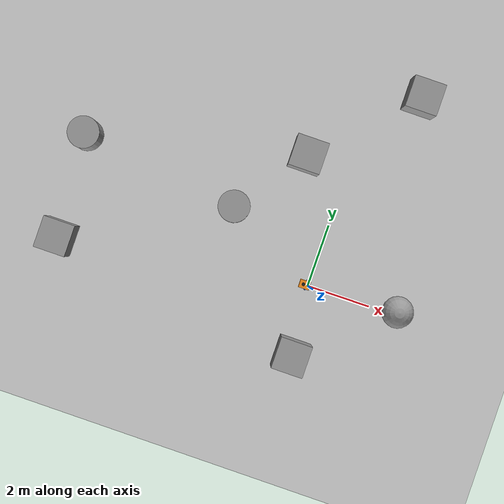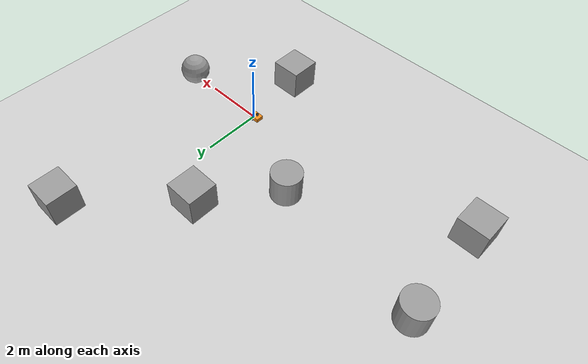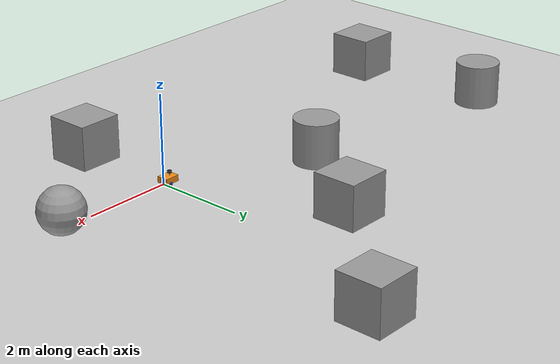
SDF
<sdf version="1.7">
 <world name="default">
  <light name="sun" type="directional">
   <pose>0 0 10 0 -0 0</pose>
   <diffuse>0.8 0.8 0.8 1</diffuse>
   <specular>0.2 0.2 0.2 1</specular>
   <attenuation>
    <range>1000</range>
    <constant>0.9</constant>
    <linear>0.01</linear>
    <quadratic>0.001</quadratic>
   </attenuation>
   <direction>-0.5 0.1 -0.9</direction>
   <spot><inner_angle>0</inner_angle><outer_angle>0</outer_angle><falloff>0</falloff></spot>
  </light>
  <model name="ground_plane">
   <static>1</static>
   <link name="link">
    <collision name="collision">
     <geometry><plane><normal>0 0 1</normal><size>100 100</size></plane></geometry>
     <surface>
      <contact><collide_bitmask>65535</collide_bitmask></contact>
      <friction><ode><mu>100</mu><mu2>50</mu2></ode></friction>
     </surface>
    </collision>
    <visual name="visual">
     <cast_shadows>0</cast_shadows>
     <geometry><plane><normal>0 0 1</normal><size>100 100</size></plane></geometry>
     <material>
      <script><uri>file://media/materials/scripts/gazebo.material</uri><name>Gazebo/Grey</name></script>
     </material>
    </visual>
   </link>
  </model>
  <gravity>0 0 -9.8</gravity>
  <magnetic_field>6e-06 2.3e-05 -4.2e-05</magnetic_field>
  <atmosphere type="adiabatic"/>
  <physics type="ode">
   <max_step_size>0.001</max_step_size>
   <real_time_factor>1</real_time_factor>
   <real_time_update_rate>1000</real_time_update_rate>
  </physics>
  <scene><ambient>0.4 0.4 0.4 1</ambient><background>0.7 0.7 0.7 1</background><shadows>1</shadows></scene>
  <audio><device>default</device></audio>
  <spherical_coordinates>
   <surface_model>EARTH_WGS84</surface_model>
   <latitude_deg>0</latitude_deg>
   <longitude_deg>0</longitude_deg>
   <elevation>0</elevation>
   <heading_deg>0</heading_deg>
  </spherical_coordinates>
  <model name="my_bot">
   <link name="base_link">
    <inertial>
     <pose>-0.067475 0 0.081098 0 -0 0</pose>
     <mass>0.61</mass>
     <inertia>
      <ixx>0.00561003</ixx>
      <ixy>0</ixy>
      <ixz>0.000453811</ixz>
      <iyy>0.00760348</iyy>
      <iyz>0</iyz>
      <izz>0.00797093</izz>
     </inertia>
    </inertial>
    <collision name="base_link_fixed_joint_lump__chassis_collision">
     <pose>-0.0585 0 0.059 0 -0 0</pose>
     <geometry><box><size>0.335 0.265 0.138</size></box></geometry>
    </collision>
    <collision name="base_link_fixed_joint_lump__caster_wheel_collision_1">
     <pose>-0.151 0 -0.023 0 -0 0</pose>
     <geometry><sphere><radius>0.01</radius></sphere></geometry>
     <surface><friction><ode><mu>0.001</mu><mu2>0.001</mu2></ode></friction></surface>
    </collision>
    <collision name="base_link_fixed_joint_lump__laser_frame_collision_2">
     <pose>-0.104 0 0.202 0 -0 0</pose>
     <geometry><cylinder><length>0.04</length><radius>0.05</radius></cylinder></geometry>
    </collision>
    <visual name="base_link_fixed_joint_lump__chassis_visual">
     <pose>-0.0585 0 0.059 0 -0 0</pose>
     <geometry><box><size>0.335 0.265 0.138</size></box></geometry>
     <material>
      <script><name>Gazebo/Orange</name><uri>file://media/materials/scripts/gazebo.material</uri></script>
     </material>
    </visual>
    <visual name="base_link_fixed_joint_lump__camera_link_visual_1">
     <pose>0.05 0 0.171 0 0.18 0</pose>
     <geometry><box><size>0.01 0.03 0.03</size></box></geometry>
     <material>
      <script><name>Gazebo/Black</name><uri>file://media/materials/scripts/gazebo.material</uri></script>
     </material>
    </visual>
    <visual name="base_link_fixed_joint_lump__camera_link_visual_2">
     <pose>0.041049 0 0.121808 0 0.18 0</pose>
     <geometry><cylinder><length>0.1</length><radius>0.002</radius></cylinder></geometry>
     <material>
      <script><name>Gazebo/Black</name><uri>file://media/materials/scripts/gazebo.material</uri></script>
     </material>
    </visual>
    <visual name="base_link_fixed_joint_lump__caster_wheel_visual_3">
     <pose>-0.151 0 -0.023 0 -0 0</pose>
     <geometry><sphere><radius>0.01</radius></sphere></geometry>
     <material>
      <script><name>Gazebo/White</name><uri>file://media/materials/scripts/gazebo.material</uri></script>
     </material>
    </visual>
    <visual name="base_link_fixed_joint_lump__face_link_visual_4">
     <pose>0.109 0.05 0.069 3.14159 1.57079 3.14159</pose>
     <geometry><cylinder><length>0.002</length><radius>0.01</radius></cylinder></geometry>
     <material>
      <script><name>Gazebo/Black</name><uri>file://media/materials/scripts/gazebo.material</uri></script>
     </material>
    </visual>
    <visual name="base_link_fixed_joint_lump__face_link_visual_5">
     <pose>0.109 -0.05 0.069 3.14159 1.57079 3.14159</pose>
     <geometry><cylinder><length>0.002</length><radius>0.01</radius></cylinder></geometry>
     <material>
      <script><name>Gazebo/Black</name><uri>file://media/materials/scripts/gazebo.material</uri></script>
     </material>
    </visual>
    <visual name="base_link_fixed_joint_lump__face_link_visual_6">
     <pose>0.098 0 0.059 0 1.5 0</pose>
     <geometry><cylinder><length>0.02</length><radius>0.05</radius></cylinder></geometry>
     <material>
      <script><name>Gazebo/Black</name><uri>file://media/materials/scripts/gazebo.material</uri></script>
     </material>
    </visual>
    <visual name="base_link_fixed_joint_lump__laser_frame_visual_7">
     <pose>-0.104 0 0.202 0 -0 0</pose>
     <geometry><cylinder><length>0.04</length><radius>0.05</radius></cylinder></geometry>
     <material>
      <script><name>Gazebo/Black</name><uri>file://media/materials/scripts/gazebo.material</uri></script>
     </material>
    </visual>
    <visual name="base_link_fixed_joint_lump__laser_frame_visual_8">
     <pose>-0.104 0 0.152 0 -0 0</pose>
     <geometry><cylinder><length>0.1</length><radius>0.01</radius></cylinder></geometry>
     <material>
      <script><name>Gazebo/Black</name><uri>file://media/materials/scripts/gazebo.material</uri></script>
     </material>
    </visual>
    <sensor name="camera" type="camera">
     <visualize>1</visualize>
     <update_rate>10</update_rate>
     <camera>
      <horizontal_fov>1.089</horizontal_fov>
      <image><format>R8G8B8</format><width>640</width><height>480</height></image>
      <clip><near>0.05</near><far>8</far></clip>
     </camera>
     <plugin name="camera_controller" filename="libgazebo_ros_camera.so">
      <frame_name>camera_link_optical</frame_name>
     </plugin>
     <pose>0.05 0 0.171 0 0.18 0</pose>
    </sensor>
    <sensor name="laser" type="ray">
     <visualize>0</visualize>
     <update_rate>10</update_rate>
     <ray>
      <scan>
       <horizontal>
        <samples>360</samples>
        <min_angle>-3.14</min_angle>
        <max_angle>3.14</max_angle>
        <resolution>1</resolution>
       </horizontal>
       <vertical><samples>1</samples><min_angle>0</min_angle><max_angle>0</max_angle></vertical>
      </scan>
      <range><min>0.3</min><max>12</max></range>
     </ray>
     <plugin name="laser_controller" filename="libgazebo_ros_ray_sensor.so">
      <ros><argument>~/out:=scan</argument></ros>
      <output_type>sensor_msgs/LaserScan</output_type>
      <frame_name>laser_frame</frame_name>
     </plugin>
     <pose>-0.104 0 0.202 0 -0 0</pose>
    </sensor>
   </link>
   <joint name="left_wheel_joint" type="revolute">
    <pose relative_to="base_link">0 0.1485 0 -1.5708 0 0</pose>
    <parent>base_link</parent>
    <child>left_wheel</child>
    <axis>
     <xyz>0 0 1</xyz>
     <limit><lower>-1e+16</lower><upper>1e+16</upper></limit>
     <dynamics><spring_reference>0</spring_reference><spring_stiffness>0</spring_stiffness></dynamics>
    </axis>
   </joint>
   <link name="left_wheel">
    <pose relative_to="left_wheel_joint">0 0 0 0 -0 0</pose>
    <inertial>
     <mass>0.05</mass>
     <inertia>
      <ixx>1.64292e-05</ixx>
      <ixy>0</ixy>
      <ixz>0</ixz>
      <iyy>1.64292e-05</iyy>
      <iyz>0</iyz>
      <izz>2.7225e-05</izz>
     </inertia>
    </inertial>
    <collision name="left_wheel_collision">
     <geometry><sphere><radius>0.033</radius></sphere></geometry>
    </collision>
    <visual name="left_wheel_visual">
     <geometry><cylinder><length>0.026</length><radius>0.033</radius></cylinder></geometry>
     <material>
      <script><name>Gazebo/Blue</name><uri>file://media/materials/scripts/gazebo.material</uri></script>
     </material>
    </visual>
   </link>
   <joint name="right_wheel_joint" type="revolute">
    <pose relative_to="base_link">0 -0.1485 0 1.5708 -0 0</pose>
    <parent>base_link</parent>
    <child>right_wheel</child>
    <axis>
     <xyz>0 0 -1</xyz>
     <limit><lower>-1e+16</lower><upper>1e+16</upper></limit>
     <dynamics><spring_reference>0</spring_reference><spring_stiffness>0</spring_stiffness></dynamics>
    </axis>
   </joint>
   <link name="right_wheel">
    <pose relative_to="right_wheel_joint">0 0 0 0 -0 0</pose>
    <inertial>
     <mass>0.05</mass>
     <inertia>
      <ixx>1.64292e-05</ixx>
      <ixy>0</ixy>
      <ixz>0</ixz>
      <iyy>1.64292e-05</iyy>
      <iyz>0</iyz>
      <izz>2.7225e-05</izz>
     </inertia>
    </inertial>
    <collision name="right_wheel_collision">
     <geometry><sphere><radius>0.033</radius></sphere></geometry>
    </collision>
    <visual name="right_wheel_visual">
     <geometry><cylinder><length>0.026</length><radius>0.033</radius></cylinder></geometry>
     <material>
      <script><name>Gazebo/Blue</name><uri>file://media/materials/scripts/gazebo.material</uri></script>
     </material>
    </visual>
   </link>
   <static>0</static>
   <plugin name="gazebo_ros2_control" filename="libgazebo_ros2_control.so">
    <parameters>/home/lucifer/dev_ws/install/dbot/share/dbot/config/my_controllers.yaml</parameters>
    <parameters>/home/lucifer/dev_ws/install/dbot/share/dbot/config/gaz_ros2_ctl_use_sim.yaml</parameters>
   </plugin>
   <pose>-0.064166 4.7e-05 0.032997 -1.7e-05 1.8e-05 0.001921</pose>
  </model>
  <model name="unit_box">
   <pose>0.169219 -2.20131 0.499995 0 1e-05 0</pose>
   <link name="link">
    <inertial>
     <mass>1</mass>
     <inertia>
      <ixx>0.166667</ixx>
      <ixy>0</ixy>
      <ixz>0</ixz>
      <iyy>0.166667</iyy>
      <iyz>0</iyz>
      <izz>0.166667</izz>
     </inertia>
    </inertial>
    <collision name="collision"><geometry><box><size>1 1 1</size></box></geometry></collision>
    <visual name="visual">
     <geometry><box><size>1 1 1</size></box></geometry>
     <material>
      <script><name>Gazebo/Grey</name><uri>file://media/materials/scripts/gazebo.material</uri></script>
     </material>
    </visual>
   </link>
  </model>
  <model name="unit_box_0">
   <pose>-1.3621 3.82515 0.499995 -1e-05 -0 -0</pose>
   <link name="link">
    <inertial>
     <mass>1</mass>
     <inertia>
      <ixx>0.166667</ixx>
      <ixy>0</ixy>
      <ixz>0</ixz>
      <iyy>0.166667</iyy>
      <iyz>0</iyz>
      <izz>0.166667</izz>
     </inertia>
    </inertial>
    <collision name="collision"><geometry><box><size>1 1 1</size></box></geometry></collision>
    <visual name="visual">
     <geometry><box><size>1 1 1</size></box></geometry>
     <material>
      <script><name>Gazebo/Grey</name><uri>file://media/materials/scripts/gazebo.material</uri></script>
     </material>
    </visual>
   </link>
  </model>
  <model name="unit_cylinder">
   <pose>-2.99407 1.5744 0.499992 -3e-06 -4e-06 -0</pose>
   <link name="link">
    <inertial>
     <mass>1</mass>
     <inertia><ixx>0.145833</ixx><ixy>0</ixy><ixz>0</ixz><iyy>0.145833</iyy><iyz>0</iyz><izz>0.125</izz></inertia>
    </inertial>
    <collision name="collision">
     <geometry><cylinder><radius>0.5</radius><length>1</length></cylinder></geometry>
    </collision>
    <visual name="visual">
     <geometry><cylinder><radius>0.5</radius><length>1</length></cylinder></geometry>
     <material>
      <script><name>Gazebo/Grey</name><uri>file://media/materials/scripts/gazebo.material</uri></script>
     </material>
    </visual>
   </link>
  </model>
  <model name="unit_box_1">
   <pose>-7.87164 -1.07455 0.499995 -1e-05 -0 -0</pose>
   <link name="link">
    <inertial>
     <mass>1</mass>
     <inertia>
      <ixx>0.166667</ixx>
      <ixy>0</ixy>
      <ixz>0</ixz>
      <iyy>0.166667</iyy>
      <iyz>0</iyz>
      <izz>0.166667</izz>
     </inertia>
    </inertial>
    <collision name="collision"><geometry><box><size>1 1 1</size></box></geometry></collision>
    <visual name="visual">
     <geometry><box><size>1 1 1</size></box></geometry>
     <material>
      <script><name>Gazebo/Grey</name><uri>file://media/materials/scripts/gazebo.material</uri></script>
     </material>
    </visual>
   </link>
  </model>
  <model name="unit_box_2">
   <pose>1.4245 6.67022 0.499995 0 1e-05 0</pose>
   <link name="link">
    <inertial>
     <mass>1</mass>
     <inertia>
      <ixx>0.166667</ixx>
      <ixy>0</ixy>
      <ixz>0</ixz>
      <iyy>0.166667</iyy>
      <iyz>0</iyz>
      <izz>0.166667</izz>
     </inertia>
    </inertial>
    <collision name="collision"><geometry><box><size>1 1 1</size></box></geometry></collision>
    <visual name="visual">
     <geometry><box><size>1 1 1</size></box></geometry>
     <material>
      <script><name>Gazebo/Grey</name><uri>file://media/materials/scripts/gazebo.material</uri></script>
     </material>
    </visual>
   </link>
  </model>
  <model name="unit_sphere">
   <pose>2.83866 0.139889 0.5 0 -0 0</pose>
   <link name="link">
    <inertial>
     <mass>1</mass>
     <inertia><ixx>0.1</ixx><ixy>0</ixy><ixz>0</ixz><iyy>0.1</iyy><iyz>0</iyz><izz>0.1</izz></inertia>
    </inertial>
    <collision name="collision"><geometry><sphere><radius>0.5</radius></sphere></geometry></collision>
    <visual name="visual">
     <geometry><sphere><radius>0.5</radius></sphere></geometry>
     <material>
      <script><name>Gazebo/Grey</name><uri>file://media/materials/scripts/gazebo.material</uri></script>
     </material>
    </visual>
   </link>
  </model>
  <model name="unit_cylinder_0">
   <pose>-8.06906 2.20887 0.499997 3e-06 4e-06 -0</pose>
   <link name="link">
    <inertial>
     <mass>1</mass>
     <inertia><ixx>0.145833</ixx><ixy>0</ixy><ixz>0</ixz><iyy>0.145833</iyy><iyz>0</iyz><izz>0.125</izz></inertia>
    </inertial>
    <collision name="collision">
     <geometry><cylinder><radius>0.5</radius><length>1</length></cylinder></geometry>
    </collision>
    <visual name="visual">
     <geometry><cylinder><radius>0.5</radius><length>1</length></cylinder></geometry>
     <material>
      <script><name>Gazebo/Grey</name><uri>file://media/materials/scripts/gazebo.material</uri></script>
     </material>
    </visual>
   </link>
  </model>
 </world>
</sdf>
